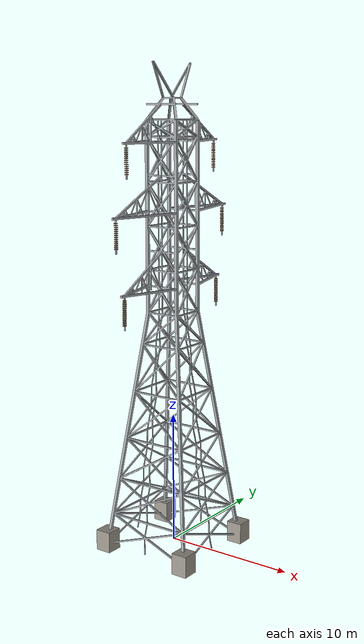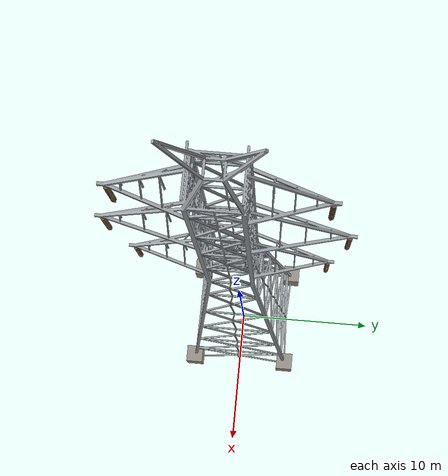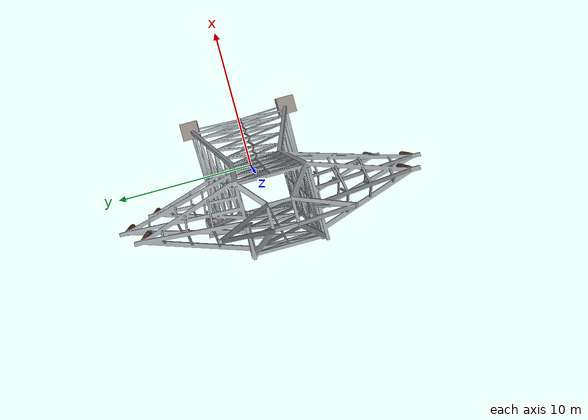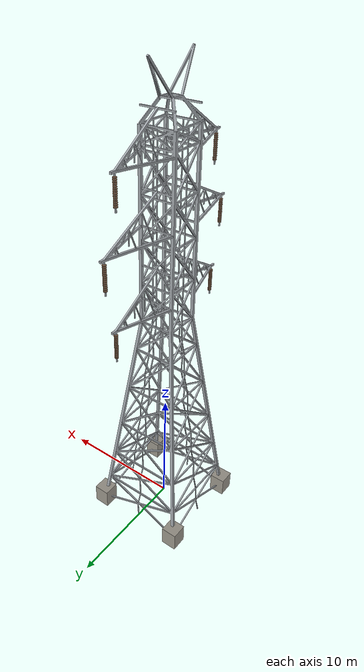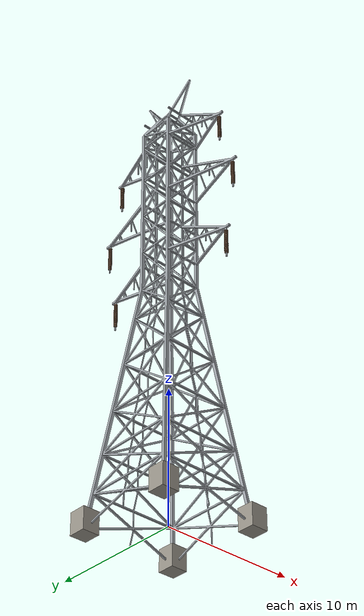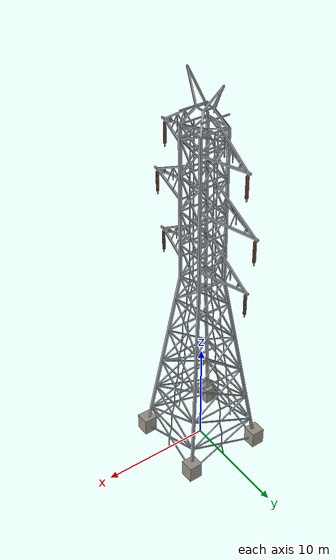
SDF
<?xml version="1.0"?>
<sdf version="1.9">
  <model name="hv_tower_220kv">
    <static>true</static>
    <link name="link">
      <visual name="steel">
        <cast_shadows>true</cast_shadows>
        <geometry><mesh><uri>meshes/tower_steel.obj</uri></mesh></geometry>
        <material>
          <ambient>0.30 0.31 0.33 1</ambient>
          <diffuse>0.62 0.64 0.66 1</diffuse>
          <specular>0.25 0.25 0.26 1</specular>
        </material>
      </visual>
      <visual name="insulators">
        <cast_shadows>true</cast_shadows>
        <geometry><mesh><uri>meshes/insulators.obj</uri></mesh></geometry>
        <material>
          <ambient>0.20 0.15 0.11 1</ambient>
          <diffuse>0.46 0.34 0.25 1</diffuse>
          <specular>0.35 0.30 0.25 1</specular>
        </material>
      </visual>
      <visual name="foundations">
        <cast_shadows>true</cast_shadows>
        <geometry><mesh><uri>meshes/foundations.obj</uri></mesh></geometry>
        <material>
          <ambient>0.28 0.27 0.25 1</ambient>
          <diffuse>0.60 0.58 0.54 1</diffuse>
          <specular>0.05 0.05 0.05 1</specular>
        </material>
      </visual>

      <collision name="body_0"><pose>0 0 2.67 0 0 0</pose>
        <geometry><box><size>6.52 6.52 5.33</size></box></geometry></collision>
      <collision name="body_1"><pose>0 0 8.00 0 0 0</pose>
        <geometry><box><size>5.16 5.16 5.33</size></box></geometry></collision>
      <collision name="body_2"><pose>0 0 13.33 0 0 0</pose>
        <geometry><box><size>3.79 3.79 5.33</size></box></geometry></collision>
      <collision name="body_3"><pose>0 0 18.67 0 0 0</pose>
        <geometry><box><size>2.60 2.60 5.33</size></box></geometry></collision>
      <collision name="body_4"><pose>0 0 24.00 0 0 0</pose>
        <geometry><box><size>2.60 2.60 5.33</size></box></geometry></collision>
      <collision name="body_5"><pose>0 0 29.34 0 0 0</pose>
        <geometry><box><size>2.60 2.60 5.33</size></box></geometry></collision>
      <collision name="arm_0"><pose>0 0 21.02 0 0 0</pose>
        <geometry><box><size>1.6 11.90 3.4</size></box></geometry></collision>
      <collision name="arm_1"><pose>0 0 26.49 0 0 0</pose>
        <geometry><box><size>1.6 13.50 3.4</size></box></geometry></collision>
      <collision name="arm_2"><pose>0 0 31.49 0 0 0</pose>
        <geometry><box><size>1.6 11.10 3.4</size></box></geometry></collision>
      <collision name="peak"><pose>0 0 34.00 0 0 0</pose>
        <geometry><box><size>1.2 4.80 4.00</size></box></geometry></collision>
      <collision name="insulator_0"><pose>0 -5.60 18.82 0 0 0</pose>
        <geometry><cylinder><radius>0.22</radius><length>2.40</length></cylinder></geometry></collision>
      <collision name="insulator_1"><pose>0 5.60 18.82 0 0 0</pose>
        <geometry><cylinder><radius>0.22</radius><length>2.40</length></cylinder></geometry></collision>
      <collision name="insulator_2"><pose>0 -6.40 24.29 0 0 0</pose>
        <geometry><cylinder><radius>0.22</radius><length>2.40</length></cylinder></geometry></collision>
      <collision name="insulator_3"><pose>0 6.40 24.29 0 0 0</pose>
        <geometry><cylinder><radius>0.22</radius><length>2.40</length></cylinder></geometry></collision>
      <collision name="insulator_4"><pose>0 -5.20 29.29 0 0 0</pose>
        <geometry><cylinder><radius>0.22</radius><length>2.40</length></cylinder></geometry></collision>
      <collision name="insulator_5"><pose>0 5.20 29.29 0 0 0</pose>
        <geometry><cylinder><radius>0.22</radius><length>2.40</length></cylinder></geometry></collision>
    </link>
  </model>
</sdf>
